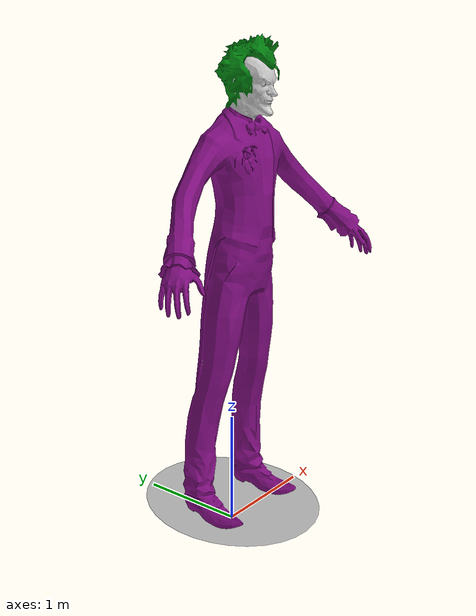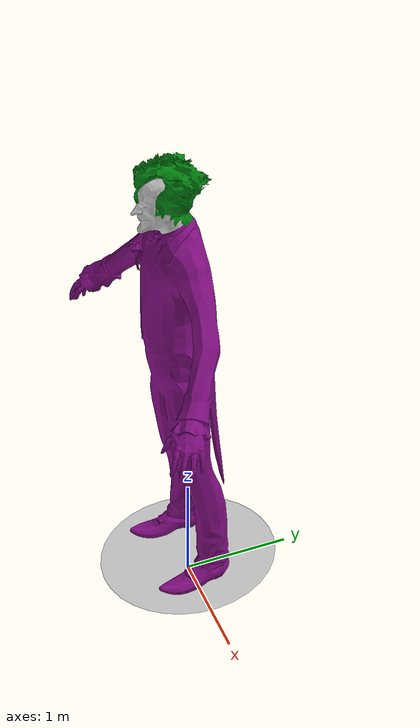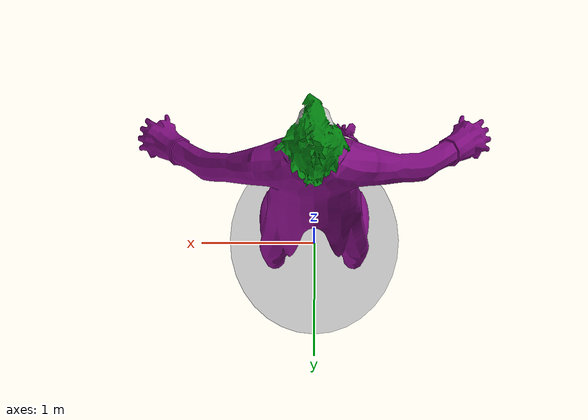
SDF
<?xml version="1.0" ?>
<sdf version="1.5">
  <model name="joker">
    <link name="link">
      <inertial>
        <pose>0 -0.1 0.95 0 0 0</pose>
        <mass>80.0</mass>
        <inertia>
          <ixx>24.88</ixx>
          <ixy>0</ixy>
          <ixz>0</ixz>
          <iyy>25.73</iyy>
          <iyz>0</iyz>
          <izz>2.48</izz>
        </inertia>
      </inertial>

      <collision name="bottom">
        <pose>0 -0.1 0.01 0 0 0</pose>
        <geometry>
          <box>
            <size>0.5 0.35 0.02</size>
          </box>
        </geometry>
      </collision>

      <collision name="joker">
        <pose>0 0 0.02 0.04 0 0</pose>
        <geometry>
          <mesh>
            <uri>model://joker/meshes/joker2.dae</uri>
          </mesh>
        </geometry>
      </collision>

      <visual name="visual">
        <pose>0 0 0.2 0.04 0 0</pose>
        <geometry>
          <mesh>
            <uri>model://joker/meshes/joker2.dae</uri>
          </mesh>
        </geometry>
      </visual>
    </link>
  </model>
</sdf>
